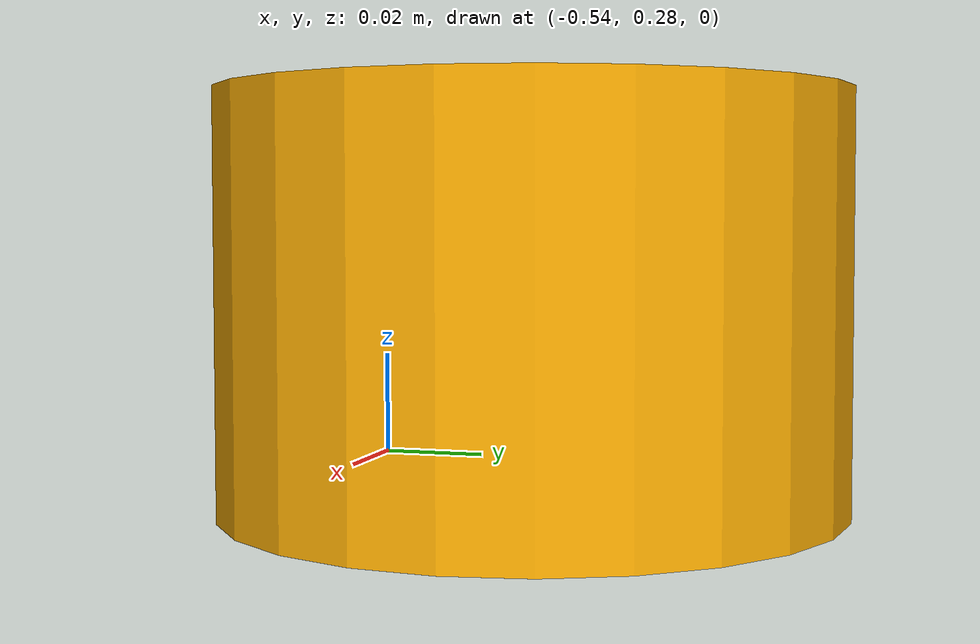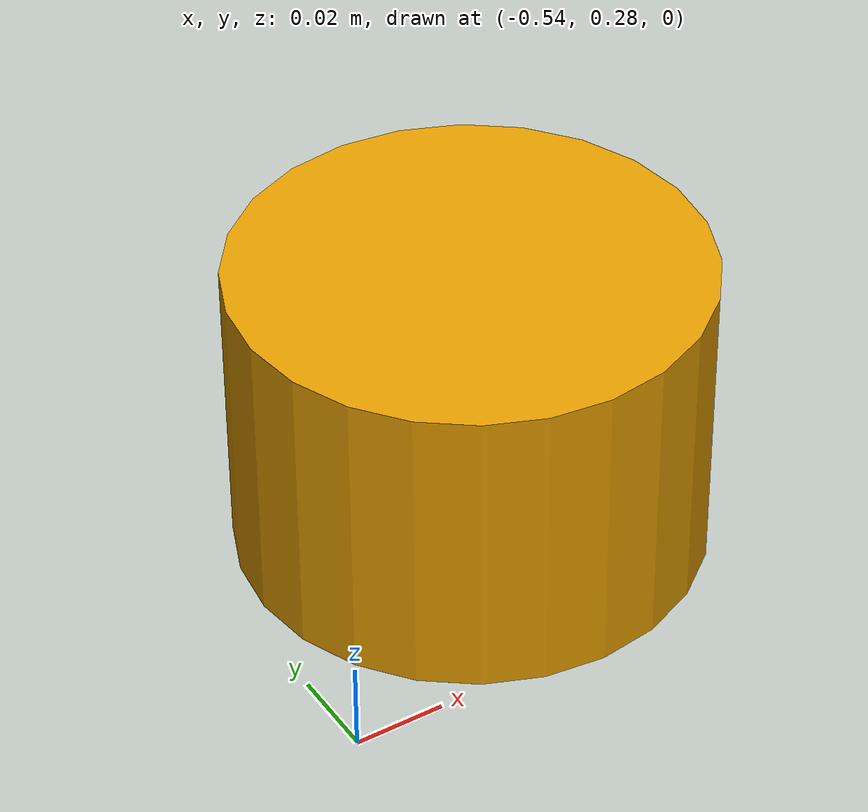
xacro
<robot xmlns:xacro="http://www.ros.org/wiki/xacro" name="primitives">
  <xacro:property name="shape_name" value="Cylinder" />
  <xacro:property name="length" value="0.0689" />
  <xacro:property name="width" value="0.1496" />
  <xacro:property name="height" value="0.2091" />
  <xacro:property name="radius" value="0.0519" />
  <xacro:property name="xyz" value="-0.4837 0.3259 0.03445" />
  <xacro:property name="rpy" value="0 0 0" />
  <xacro:property name="mass" value="10" />

  <xacro:include filename="$(find franka_description)/robots/utils.xacro" />

  <xacro:if value="${shape_name == 'Box'}">
    <link name="Box">
      <inertial>
        <origin rpy="${rpy}" xyz="${xyz}" />
        <mass value="${mass}" />
        <cuboid_inertia_def height="${height}" length="${length}" mass="${mass}" width="${width}" />
      </inertial>
      <visual>
        <origin rpy="${rpy}" xyz="${xyz}" />
        <geometry>
          <box size="${length} ${width} ${height}" />
        </geometry>
      </visual>
      <collision>
        <origin rpy="${rpy}" xyz="${xyz}" />
        <geometry>
          <box size="${length} ${width} ${height}" />
        </geometry>
      </collision>
    </link>
    <gazebo>
      <material>Gazebo/Blue</material>
      <static>true</static>
    </gazebo>
  </xacro:if>

  <xacro:if value="${shape_name == 'Sphere'}">
    <link name="Sphere">
      <inertial>
        <origin rpy="${rpy}" xyz="${xyz}" />
        <mass value="${mass}" />
        <sphere_inertia_def mass="${mass}" radius="${radius}" />
      </inertial>
      <visual>
        <origin rpy="${rpy}" xyz="${xyz}" />
        <geometry>
          <sphere radius="${radius}" />
        </geometry>
      </visual>
      <collision>
        <origin rpy="${rpy}" xyz="${xyz}" />
        <geometry>
          <sphere radius="${radius}" />
        </geometry>
      </collision>
    </link>
    <gazebo>
      <material>Gazebo/Blue</material>
      <static>true</static>
    </gazebo>
  </xacro:if>

  <xacro:if value="${shape_name == 'Cylinder'}">
    <link name="Cylinder">
      <inertial>
        <origin rpy="${rpy}" xyz="${xyz}" />
        <mass value="${mass}" />
        <cylinder_inertia_def length="${length}" mass="${mass}" radius="${radius}" />
      </inertial>
      <visual>
        <origin rpy="${rpy}" xyz="${xyz}" />
        <geometry>
          <cylinder length="${length}" radius="${radius}" />
        </geometry>
      </visual>
      <collision>
        <origin rpy="${rpy}" xyz="${xyz}" />
        <geometry>
          <cylinder length="${length}" radius="${radius}" />
        </geometry>
      </collision>
    </link>
    <gazebo>
      <material>Gazebo/Blue</material>
      <static>true</static>
    </gazebo>
  </xacro:if>
</robot>

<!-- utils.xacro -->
<robot xmlns:xacro="http://www.ros.org/wiki/xacro">

  <!-- Adds the required tags to simulate one joint in gazebo     -->
  <!-- joint - Name of the panda joint to simulate                -->
  <!-- transmission - type of the transmission of the joint       -->
  <xacro:macro name="gazebo-joint" params="joint transmission:=hardware_interface/EffortJointInterface">
    <gazebo reference="${joint}">
      <!-- Needed for ODE to output external wrenches on joints -->
      <provideFeedback>true</provideFeedback>
    </gazebo>

    <transmission name="${joint}_transmission">
      <type>transmission_interface/SimpleTransmission</type>
      <joint name="${joint}">
        <hardwareInterface>${transmission}</hardwareInterface>
      </joint>
      <actuator name="${joint}_motor">
        <hardwareInterface>${transmission}</hardwareInterface>
      </actuator>
    </transmission>
  </xacro:macro>

  <xacro:macro name="gazebo-friction" params="link mu">
    <gazebo reference="${link}">
      <collision>
        <max_contacts>10</max_contacts>
        <surface>
          <contact>
            <ode>
              <!-- These two parameter need application specific tuning. -->
              <!-- Usually you want no "snap out" velocity and a generous -->
              <!-- penetration depth to keep the grasping stable -->
              <max_vel>0</max_vel>
              <min_depth>0.001</min_depth>
            </ode>
          </contact>
          <friction>
            <ode>
              <mu>${mu}</mu>
              <mu2>${mu}</mu2>
            </ode>
          </friction>
          <bounce/>
        </surface>
      </collision>
    </gazebo>
  </xacro:macro>

  <xacro:macro name="gazebo-coll-bitmask" params="link bitmask">
    <gazebo reference="${link}">
      <collision>
        <surface>
          <contact>
            <collide_bitmask>${bitmask}</collide_bitmask>
          </contact>
        </surface>
      </collision>
    </gazebo>
  </xacro:macro>

  <!-- Adds the required tags to provide a `FrankaStateInterface` -->
  <!-- when simulating with franka_hw_sim plugin                  -->
  <!-- arm_id - Arm ID of the panda to simulate (default 'panda') -->
  <xacro:macro name="transmission-franka-state" params="arm_id:=panda">
    <transmission name="${arm_id}_franka_state">
      <type>franka_hw/FrankaStateInterface</type>
      <joint name="${arm_id}_joint1"><hardwareInterface>franka_hw/FrankaStateInterface</hardwareInterface></joint>
      <joint name="${arm_id}_joint2"><hardwareInterface>franka_hw/FrankaStateInterface</hardwareInterface></joint>
      <joint name="${arm_id}_joint3"><hardwareInterface>franka_hw/FrankaStateInterface</hardwareInterface></joint>
      <joint name="${arm_id}_joint4"><hardwareInterface>franka_hw/FrankaStateInterface</hardwareInterface></joint>
      <joint name="${arm_id}_joint5"><hardwareInterface>franka_hw/FrankaStateInterface</hardwareInterface></joint>
      <joint name="${arm_id}_joint6"><hardwareInterface>franka_hw/FrankaStateInterface</hardwareInterface></joint>
      <joint name="${arm_id}_joint7"><hardwareInterface>franka_hw/FrankaStateInterface</hardwareInterface></joint>

      <actuator name="${arm_id}_motor1"><hardwareInterface>franka_hw/FrankaStateInterface</hardwareInterface></actuator>
      <actuator name="${arm_id}_motor2"><hardwareInterface>franka_hw/FrankaStateInterface</hardwareInterface></actuator>
      <actuator name="${arm_id}_motor3"><hardwareInterface>franka_hw/FrankaStateInterface</hardwareInterface></actuator>
      <actuator name="${arm_id}_motor4"><hardwareInterface>franka_hw/FrankaStateInterface</hardwareInterface></actuator>
      <actuator name="${arm_id}_motor5"><hardwareInterface>franka_hw/FrankaStateInterface</hardwareInterface></actuator>
      <actuator name="${arm_id}_motor6"><hardwareInterface>franka_hw/FrankaStateInterface</hardwareInterface></actuator>
      <actuator name="${arm_id}_motor7"><hardwareInterface>franka_hw/FrankaStateInterface</hardwareInterface></actuator>
    </transmission>
  </xacro:macro>

  <!-- Adds the required tags to provide a `FrankaModelInterface`   -->
  <!-- when simulating with franka_hw_sim plugin                    -->
  <!-- arm_id - Arm ID of the panda to simulate (default 'panda')   -->
  <!-- root   - Joint name of the base of the robot                 -->
  <!-- tip    - Joint name of the tip of the robot (flange or hand) -->
  <xacro:macro name="transmission-franka-model" params="arm_id:=panda root:=panda_joint1 tip:=panda_joint7">
    <transmission name="${arm_id}_franka_model">
      <type>franka_hw/FrankaModelInterface</type>
      <joint name="${root}">
        <role>root</role>
        <hardwareInterface>franka_hw/FrankaModelInterface</hardwareInterface>
      </joint>
      <joint name="${tip}">
        <role>tip</role>
        <hardwareInterface>franka_hw/FrankaModelInterface</hardwareInterface>
      </joint>

      <actuator name="${root}_motor_root"><hardwareInterface>franka_hw/FrankaModelInterface</hardwareInterface></actuator>
      <actuator name="${tip}_motor_tip"  ><hardwareInterface>franka_hw/FrankaModelInterface</hardwareInterface></actuator>
    </transmission>
  </xacro:macro>

  <xacro:macro name="inertia-cylinder" params="mass radius h">
    <inertial>
      <mass value="${mass}" />
      <inertia ixx="${1./12 * mass * (3 * radius**2 + h**2)}" ixy = "0" ixz = "0"
               iyy="${1./12 * mass * (3 * radius**2 + h**2)}" iyz = "0"
               izz="${1./2  * mass * radius**2}" />
    </inertial>
  </xacro:macro>

  <!-- taken from https://github.com/epfl-lasa/kuka-lwr-ros/blob/2533aa1bb521d531845cea45c93a4ded1ccf6539/kuka_lwr/lwr_description/model/utils.xacro -->
  <xacro:property name="M_PI" value="3.1415926535897931"/>

  <!-- Little helper macro to define the inertia matrix needed for links. -->
  <xacro:macro name="cuboid_inertia_def" params="width height length mass">
    <inertia ixx="${mass * (height * height + width * width) / 12}"
             iyy="${mass * (height * height + length * length) / 12}"
             izz="${mass * (width * width + length * length) / 12}"
             ixy="0" iyz="0" ixz="0"/>
  </xacro:macro>

  <!-- length is along the z-axis! -->
  <xacro:macro name="cylinder_inertia_def" params="radius length mass">
    <inertia ixx="${mass * (3 * radius * radius + length * length) / 12}"
             iyy="${mass * (3 * radius * radius + length * length) / 12}"
             izz="${mass * radius* radius / 2}"
             ixy="0" iyz="0" ixz="0"/>
  </xacro:macro>

  <xacro:macro name="sphere_inertia_def" params="radius mass">
    <inertia ixx="${2 * mass * radius * radius / 5}"
             iyy="${2 * mass * radius * radius / 5}"
             izz="${2 * mass * radius * radius / 5}"
             ixy="0" iyz="0" ixz="0"/>
  </xacro:macro>

</robot>
